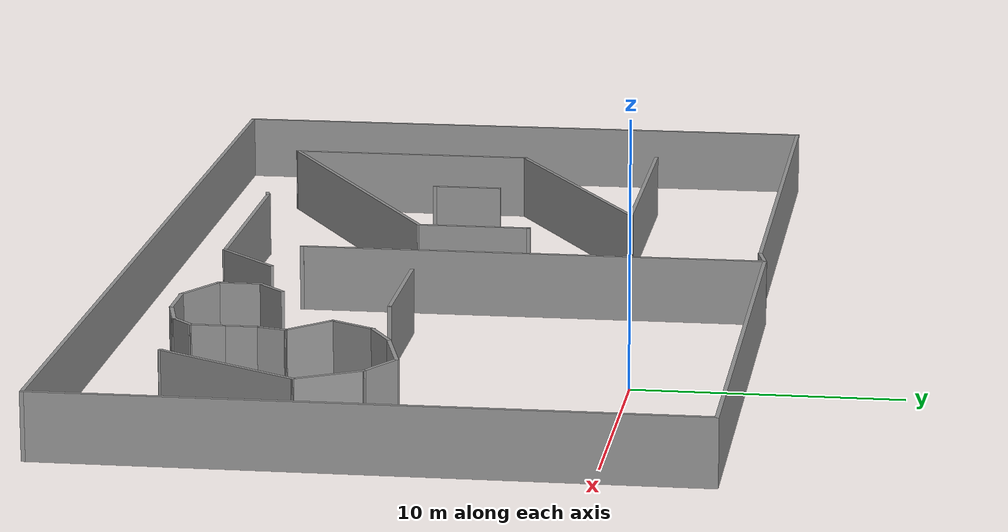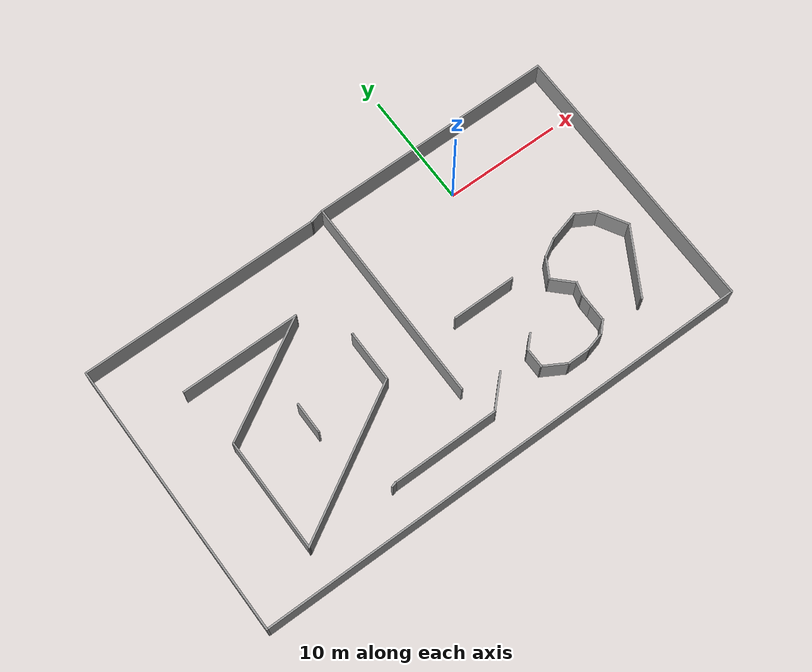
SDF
<?xml version='1.0'?>
<sdf version='1.7'>
  <model name='Untitled'>
    <pose>-9.90594 -7.76724 0 0 -0 0</pose>
    <link name='Wall_1'>
      <collision name='Wall_1_Collision'>
        <geometry>
          <box>
            <size>21.25 0.15 2.5</size>
          </box>
        </geometry>
        <pose>0 0 1.25 0 -0 0</pose>
      </collision>
      <visual name='Wall_1_Visual'>
        <pose>0 0 1.25 0 -0 0</pose>
        <geometry>
          <box>
            <size>21.25 0.15 2.5</size>
          </box>
        </geometry>
        <material>
          <script>
            <uri>file://media/materials/scripts/gazebo.material</uri>
            <name>Gazebo/Grey</name>
          </script>
          <ambient>1 1 1 1</ambient>
        </material>
        <meta>
          <layer>0</layer>
        </meta>
      </visual>
      <pose>10.875 11.9179 0 0 -0 0</pose>
    </link>
    <link name='Wall_11'>
      <collision name='Wall_11_Collision'>
        <geometry>
          <box>
            <size>10.25 0.15 2.5</size>
          </box>
        </geometry>
        <pose>0 0 1.25 0 -0 0</pose>
      </collision>
      <visual name='Wall_11_Visual'>
        <pose>0 0 1.25 0 -0 0</pose>
        <geometry>
          <box>
            <size>10.25 0.15 2.5</size>
          </box>
        </geometry>
        <material>
          <script>
            <uri>file://media/materials/scripts/gazebo.material</uri>
            <name>Gazebo/Grey</name>
          </script>
          <ambient>1 1 1 1</ambient>
        </material>
        <meta>
          <layer>0</layer>
        </meta>
      </visual>
      <pose>-11.3016 6.11885 0 0 -0 0</pose>
    </link>
    <link name='Wall_12'>
      <collision name='Wall_12_Collision'>
        <geometry>
          <box>
            <size>11 0.15 2.5</size>
          </box>
        </geometry>
        <pose>0 0 1.25 0 -0 0</pose>
      </collision>
      <visual name='Wall_12_Visual'>
        <pose>0 0 1.25 0 -0 0</pose>
        <geometry>
          <box>
            <size>11 0.15 2.5</size>
          </box>
        </geometry>
        <material>
          <script>
            <uri>file://media/materials/scripts/gazebo.material</uri>
            <name>Gazebo/Grey</name>
          </script>
          <ambient>1 1 1 1</ambient>
        </material>
        <meta>
          <layer>0</layer>
        </meta>
      </visual>
      <pose>-10.9498 3.40634 0 0 -0 -2.61799</pose>
    </link>
    <link name='Wall_13'>
      <collision name='Wall_13_Collision'>
        <geometry>
          <box>
            <size>9.75 0.15 2.5</size>
          </box>
        </geometry>
        <pose>0 0 1.25 0 -0 0</pose>
      </collision>
      <visual name='Wall_13_Visual'>
        <pose>0 0 1.25 0 -0 0</pose>
        <geometry>
          <box>
            <size>9.75 0.15 2.5</size>
          </box>
        </geometry>
        <material>
          <script>
            <uri>file://media/materials/scripts/gazebo.material</uri>
            <name>Gazebo/Grey</name>
          </script>
          <ambient>1 1 1 1</ambient>
        </material>
        <meta>
          <layer>0</layer>
        </meta>
      </visual>
      <pose>-15.6479 -4.10616 0 0 -0 -1.5708</pose>
    </link>
    <link name='Wall_14'>
      <collision name='Wall_14_Collision'>
        <geometry>
          <box>
            <size>14 0.15 2.5</size>
          </box>
        </geometry>
        <pose>0 0 1.25 0 -0 0</pose>
      </collision>
      <visual name='Wall_14_Visual'>
        <pose>0 0 1.25 0 -0 0</pose>
        <geometry>
          <box>
            <size>14 0.15 2.5</size>
          </box>
        </geometry>
        <material>
          <script>
            <uri>file://media/materials/scripts/gazebo.material</uri>
            <name>Gazebo/Grey</name>
          </script>
          <ambient>1 1 1 1</ambient>
        </material>
        <meta>
          <layer>0</layer>
        </meta>
      </visual>
      <pose>-9.65072 -5.44365 0 0 -0 0.523599</pose>
    </link>
    <link name='Wall_15'>
      <collision name='Wall_15_Collision'>
        <geometry>
          <box>
            <size>4.5 0.15 2.5</size>
          </box>
        </geometry>
        <pose>0 0 1.25 0 -0 0</pose>
      </collision>
      <visual name='Wall_15_Visual'>
        <pose>0 0 1.25 0 -0 0</pose>
        <geometry>
          <box>
            <size>4.5 0.15 2.5</size>
          </box>
        </geometry>
        <material>
          <script>
            <uri>file://media/materials/scripts/gazebo.material</uri>
            <name>Gazebo/Grey</name>
          </script>
          <ambient>1 1 1 1</ambient>
        </material>
        <meta>
          <layer>0</layer>
        </meta>
      </visual>
      <pose>-3.65349 0.193846 0 0 -0 1.5708</pose>
    </link>
    <link name='Wall_16'>
      <collision name='Wall_16_Collision'>
        <geometry>
          <box>
            <size>0.16 0.15 2.5</size>
          </box>
        </geometry>
        <pose>0 0 1.25 0 -0 0</pose>
      </collision>
      <visual name='Wall_16_Visual'>
        <pose>0 0 1.25 0 -0 0</pose>
        <geometry>
          <box>
            <size>0.16 0.15 2.5</size>
          </box>
        </geometry>
        <material>
          <script>
            <uri>file://media/materials/scripts/gazebo.material</uri>
            <name>Gazebo/Grey</name>
          </script>
          <ambient>1 1 1 1</ambient>
        </material>
        <meta>
          <layer>0</layer>
        </meta>
      </visual>
      <pose>-3.64849 2.36885 0 0 -0 0</pose>
    </link>
    <link name='Wall_18'>
      <collision name='Wall_18_Collision'>
        <geometry>
          <box>
            <size>2.75 0.15 2.5</size>
          </box>
        </geometry>
        <pose>0 0 1.25 0 -0 0</pose>
      </collision>
      <visual name='Wall_18_Visual'>
        <pose>0 0 1.25 0 -0 0</pose>
        <geometry>
          <box>
            <size>2.75 0.15 2.5</size>
          </box>
        </geometry>
        <material>
          <script>
            <uri>file://media/materials/scripts/gazebo.material</uri>
            <name>Gazebo/Grey</name>
          </script>
          <ambient>1 1 1 1</ambient>
        </material>
        <meta>
          <layer>0</layer>
        </meta>
      </visual>
      <pose>-10.11 -0.992237 0 0 -0 -1.5708</pose>
    </link>
    <link name='Wall_19'>
      <collision name='Wall_19_Collision'>
        <geometry>
          <box>
            <size>0.15 0.15 2.5</size>
          </box>
        </geometry>
        <pose>0 0 1.25 0 -0 0</pose>
      </collision>
      <visual name='Wall_19_Visual'>
        <pose>0 0 1.25 0 -0 0</pose>
        <geometry>
          <box>
            <size>0.15 0.15 2.5</size>
          </box>
        </geometry>
        <material>
          <script>
            <uri>file://media/materials/scripts/gazebo.material</uri>
            <name>Gazebo/Grey</name>
          </script>
          <ambient>1 1 1 1</ambient>
        </material>
        <meta>
          <layer>0</layer>
        </meta>
      </visual>
      <pose>-10.11 -2.29224 0 0 -0 0</pose>
    </link>
    <link name='Wall_2'>
      <collision name='Wall_2_Collision'>
        <geometry>
          <box>
            <size>24 0.15 2.5</size>
          </box>
        </geometry>
        <pose>0 0 1.25 0 -0 0</pose>
      </collision>
      <visual name='Wall_2_Visual'>
        <pose>0 0 1.25 0 -0 0</pose>
        <geometry>
          <box>
            <size>24 0.15 2.5</size>
          </box>
        </geometry>
        <material>
          <script>
            <uri>file://media/materials/scripts/gazebo.material</uri>
            <name>Gazebo/Grey</name>
          </script>
          <ambient>1 1 1 1</ambient>
        </material>
        <meta>
          <layer>0</layer>
        </meta>
      </visual>
      <pose>21.425 -0.007109 0 0 -0 -1.5708</pose>
    </link>
    <link name='Wall_21'>
      <collision name='Wall_21_Collision'>
        <geometry>
          <box>
            <size>1.5 0.15 2.5</size>
          </box>
        </geometry>
        <pose>0 0 1.25 0 -0 0</pose>
      </collision>
      <visual name='Wall_21_Visual'>
        <pose>0 0 1.25 0 -0 0</pose>
        <geometry>
          <box>
            <size>1.5 0.15 2.5</size>
          </box>
        </geometry>
        <material>
          <script>
            <uri>file://media/materials/scripts/gazebo.material</uri>
            <name>Gazebo/Grey</name>
          </script>
          <ambient>1 1 1 1</ambient>
        </material>
        <meta>
          <layer>0</layer>
        </meta>
      </visual>
      <pose>6.63069 -5.98062 0 0 -0 -2.35619</pose>
    </link>
    <link name='Wall_22'>
      <collision name='Wall_22_Collision'>
        <geometry>
          <box>
            <size>1.75 0.15 2.5</size>
          </box>
        </geometry>
        <pose>0 0 1.25 0 -0 0</pose>
      </collision>
      <visual name='Wall_22_Visual'>
        <pose>0 0 1.25 0 -0 0</pose>
        <geometry>
          <box>
            <size>1.75 0.15 2.5</size>
          </box>
        </geometry>
        <material>
          <script>
            <uri>file://media/materials/scripts/gazebo.material</uri>
            <name>Gazebo/Grey</name>
          </script>
          <ambient>1 1 1 1</ambient>
        </material>
        <meta>
          <layer>0</layer>
        </meta>
      </visual>
      <pose>6.15339 -7.25791 0 0 -0 -1.5708</pose>
    </link>
    <link name='Wall_23'>
      <collision name='Wall_23_Collision'>
        <geometry>
          <box>
            <size>2.25 0.15 2.5</size>
          </box>
        </geometry>
        <pose>0 0 1.25 0 -0 0</pose>
      </collision>
      <visual name='Wall_23_Visual'>
        <pose>0 0 1.25 0 -0 0</pose>
        <geometry>
          <box>
            <size>2.25 0.15 2.5</size>
          </box>
        </geometry>
        <material>
          <script>
            <uri>file://media/materials/scripts/gazebo.material</uri>
            <name>Gazebo/Grey</name>
          </script>
          <ambient>1 1 1 1</ambient>
        </material>
        <meta>
          <layer>0</layer>
        </meta>
      </visual>
      <pose>7.06272 -8.58291 0 0 -0 -0.523599</pose>
    </link>
    <link name='Wall_24'>
      <collision name='Wall_24_Collision'>
        <geometry>
          <box>
            <size>2 0.15 2.5</size>
          </box>
        </geometry>
        <pose>0 0 1.25 0 -0 0</pose>
      </collision>
      <visual name='Wall_24_Visual'>
        <pose>0 0 1.25 0 -0 0</pose>
        <geometry>
          <box>
            <size>2 0.15 2.5</size>
          </box>
        </geometry>
        <material>
          <script>
            <uri>file://media/materials/scripts/gazebo.material</uri>
            <name>Gazebo/Grey</name>
          </script>
          <ambient>1 1 1 1</ambient>
        </material>
        <meta>
          <layer>0</layer>
        </meta>
      </visual>
      <pose>8.89705 -9.10791 0 0 -0 0</pose>
    </link>
    <link name='Wall_25'>
      <collision name='Wall_25_Collision'>
        <geometry>
          <box>
            <size>1.75 0.15 2.5</size>
          </box>
        </geometry>
        <pose>0 0 1.25 0 -0 0</pose>
      </collision>
      <visual name='Wall_25_Visual'>
        <pose>0 0 1.25 0 -0 0</pose>
        <geometry>
          <box>
            <size>1.75 0.15 2.5</size>
          </box>
        </geometry>
        <material>
          <script>
            <uri>file://media/materials/scripts/gazebo.material</uri>
            <name>Gazebo/Grey</name>
          </script>
          <ambient>1 1 1 1</ambient>
        </material>
        <meta>
          <layer>0</layer>
        </meta>
      </visual>
      <pose>10.5948 -8.90086 0 0 -0 0.261799</pose>
    </link>
    <link name='Wall_26'>
      <collision name='Wall_26_Collision'>
        <geometry>
          <box>
            <size>1.25 0.15 2.5</size>
          </box>
        </geometry>
        <pose>0 0 1.25 0 -0 0</pose>
      </collision>
      <visual name='Wall_26_Visual'>
        <pose>0 0 1.25 0 -0 0</pose>
        <geometry>
          <box>
            <size>1.25 0.15 2.5</size>
          </box>
        </geometry>
        <material>
          <script>
            <uri>file://media/materials/scripts/gazebo.material</uri>
            <name>Gazebo/Grey</name>
          </script>
          <ambient>1 1 1 1</ambient>
        </material>
        <meta>
          <layer>0</layer>
        </meta>
      </visual>
      <pose>11.7564 -8.3049 0 0 -0 0.785398</pose>
    </link>
    <link name='Wall_27'>
      <collision name='Wall_27_Collision'>
        <geometry>
          <box>
            <size>1.5 0.15 2.5</size>
          </box>
        </geometry>
        <pose>0 0 1.25 0 -0 0</pose>
      </collision>
      <visual name='Wall_27_Visual'>
        <pose>0 0 1.25 0 -0 0</pose>
        <geometry>
          <box>
            <size>1.5 0.15 2.5</size>
          </box>
        </geometry>
        <material>
          <script>
            <uri>file://media/materials/scripts/gazebo.material</uri>
            <name>Gazebo/Grey</name>
          </script>
          <ambient>1 1 1 1</ambient>
        </material>
        <meta>
          <layer>0</layer>
        </meta>
      </visual>
      <pose>12.1453 -7.24099 0 0 -0 1.5708</pose>
    </link>
    <link name='Wall_28'>
      <collision name='Wall_28_Collision'>
        <geometry>
          <box>
            <size>1.25 0.15 2.5</size>
          </box>
        </geometry>
        <pose>0 0 1.25 0 -0 0</pose>
      </collision>
      <visual name='Wall_28_Visual'>
        <pose>0 0 1.25 0 -0 0</pose>
        <geometry>
          <box>
            <size>1.25 0.15 2.5</size>
          </box>
        </geometry>
        <material>
          <script>
            <uri>file://media/materials/scripts/gazebo.material</uri>
            <name>Gazebo/Grey</name>
          </script>
          <ambient>1 1 1 1</ambient>
        </material>
        <meta>
          <layer>0</layer>
        </meta>
      </visual>
      <pose>12.1453 -6.01599 0 0 -0 1.5708</pose>
    </link>
    <link name='Wall_29'>
      <collision name='Wall_29_Collision'>
        <geometry>
          <box>
            <size>1.25 0.15 2.5</size>
          </box>
        </geometry>
        <pose>0 0 1.25 0 -0 0</pose>
      </collision>
      <visual name='Wall_29_Visual'>
        <pose>0 0 1.25 0 -0 0</pose>
        <geometry>
          <box>
            <size>1.25 0.15 2.5</size>
          </box>
        </geometry>
        <material>
          <script>
            <uri>file://media/materials/scripts/gazebo.material</uri>
            <name>Gazebo/Grey</name>
          </script>
          <ambient>1 1 1 1</ambient>
        </material>
        <meta>
          <layer>0</layer>
        </meta>
      </visual>
      <pose>12.2877 -4.93473 0 0 -0 1.309</pose>
    </link>
    <link name='Wall_3'>
      <collision name='Wall_3_Collision'>
        <geometry>
          <box>
            <size>43 0.15 2.5</size>
          </box>
        </geometry>
        <pose>0 0 1.25 0 -0 0</pose>
      </collision>
      <visual name='Wall_3_Visual'>
        <pose>0 0 1.25 0 -0 0</pose>
        <geometry>
          <box>
            <size>43 0.15 2.5</size>
          </box>
        </geometry>
        <material>
          <script>
            <uri>file://media/materials/scripts/gazebo.material</uri>
            <name>Gazebo/Grey</name>
          </script>
          <ambient>1 1 1 1</ambient>
        </material>
        <meta>
          <layer>0</layer>
        </meta>
      </visual>
      <pose>-0 -11.9321 0 0 -0 3.14159</pose>
    </link>
    <link name='Wall_30'>
      <collision name='Wall_30_Collision'>
        <geometry>
          <box>
            <size>2.25 0.15 2.5</size>
          </box>
        </geometry>
        <pose>0 0 1.25 0 -0 0</pose>
      </collision>
      <visual name='Wall_30_Visual'>
        <pose>0 0 1.25 0 -0 0</pose>
        <geometry>
          <box>
            <size>2.25 0.15 2.5</size>
          </box>
        </geometry>
        <material>
          <script>
            <uri>file://media/materials/scripts/gazebo.material</uri>
            <name>Gazebo/Grey</name>
          </script>
          <ambient>1 1 1 1</ambient>
        </material>
        <meta>
          <layer>0</layer>
        </meta>
      </visual>
      <pose>11.6876 -3.661 0 0 -0 2.35619</pose>
    </link>
    <link name='Wall_31'>
      <collision name='Wall_31_Collision'>
        <geometry>
          <box>
            <size>2 0.15 2.5</size>
          </box>
        </geometry>
        <pose>0 0 1.25 0 -0 0</pose>
      </collision>
      <visual name='Wall_31_Visual'>
        <pose>0 0 1.25 0 -0 0</pose>
        <geometry>
          <box>
            <size>2 0.15 2.5</size>
          </box>
        </geometry>
        <material>
          <script>
            <uri>file://media/materials/scripts/gazebo.material</uri>
            <name>Gazebo/Grey</name>
          </script>
          <ambient>1 1 1 1</ambient>
        </material>
        <meta>
          <layer>0</layer>
        </meta>
      </visual>
      <pose>11.4076 -2.11747 0 0 -0 1.0472</pose>
    </link>
    <link name='Wall_32'>
      <collision name='Wall_32_Collision'>
        <geometry>
          <box>
            <size>1.75 0.15 2.5</size>
          </box>
        </geometry>
        <pose>0 0 1.25 0 -0 0</pose>
      </collision>
      <visual name='Wall_32_Visual'>
        <pose>0 0 1.25 0 -0 0</pose>
        <geometry>
          <box>
            <size>1.75 0.15 2.5</size>
          </box>
        </geometry>
        <material>
          <script>
            <uri>file://media/materials/scripts/gazebo.material</uri>
            <name>Gazebo/Grey</name>
          </script>
          <ambient>1 1 1 1</ambient>
        </material>
        <meta>
          <layer>0</layer>
        </meta>
      </visual>
      <pose>12.5629 -0.916396 0 0 -0 0.523599</pose>
    </link>
    <link name='Wall_33'>
      <collision name='Wall_33_Collision'>
        <geometry>
          <box>
            <size>2.75 0.15 2.5</size>
          </box>
        </geometry>
        <pose>0 0 1.25 0 -0 0</pose>
      </collision>
      <visual name='Wall_33_Visual'>
        <pose>0 0 1.25 0 -0 0</pose>
        <geometry>
          <box>
            <size>2.75 0.15 2.5</size>
          </box>
        </geometry>
        <material>
          <script>
            <uri>file://media/materials/scripts/gazebo.material</uri>
            <name>Gazebo/Grey</name>
          </script>
          <ambient>1 1 1 1</ambient>
        </material>
        <meta>
          <layer>0</layer>
        </meta>
      </visual>
      <pose>14.5115 -0.179932 0 0 -0 0.261799</pose>
    </link>
    <link name='Wall_34'>
      <collision name='Wall_34_Collision'>
        <geometry>
          <box>
            <size>2 0.15 2.5</size>
          </box>
        </geometry>
        <pose>0 0 1.25 0 -0 0</pose>
      </collision>
      <visual name='Wall_34_Visual'>
        <pose>0 0 1.25 0 -0 0</pose>
        <geometry>
          <box>
            <size>2 0.15 2.5</size>
          </box>
        </geometry>
        <material>
          <script>
            <uri>file://media/materials/scripts/gazebo.material</uri>
            <name>Gazebo/Grey</name>
          </script>
          <ambient>1 1 1 1</ambient>
        </material>
        <meta>
          <layer>0</layer>
        </meta>
      </visual>
      <pose>16.5682 -0.305967 0 0 -0 -0.523599</pose>
    </link>
    <link name='Wall_35'>
      <collision name='Wall_35_Collision'>
        <geometry>
          <box>
            <size>2.75 0.15 2.5</size>
          </box>
        </geometry>
        <pose>0 0 1.25 0 -0 0</pose>
      </collision>
      <visual name='Wall_35_Visual'>
        <pose>0 0 1.25 0 -0 0</pose>
        <geometry>
          <box>
            <size>2.75 0.15 2.5</size>
          </box>
        </geometry>
        <material>
          <script>
            <uri>file://media/materials/scripts/gazebo.material</uri>
            <name>Gazebo/Grey</name>
          </script>
          <ambient>1 1 1 1</ambient>
        </material>
        <meta>
          <layer>0</layer>
        </meta>
      </visual>
      <pose>18.0193 -1.8943 0 0 -0 -1.0472</pose>
    </link>
    <link name='Wall_36'>
      <collision name='Wall_36_Collision'>
        <geometry>
          <box>
            <size>6.25 0.15 2.5</size>
          </box>
        </geometry>
        <pose>0 0 1.25 0 -0 0</pose>
      </collision>
      <visual name='Wall_36_Visual'>
        <pose>0 0 1.25 0 -0 0</pose>
        <geometry>
          <box>
            <size>6.25 0.15 2.5</size>
          </box>
        </geometry>
        <material>
          <script>
            <uri>file://media/materials/scripts/gazebo.material</uri>
            <name>Gazebo/Grey</name>
          </script>
          <ambient>1 1 1 1</ambient>
        </material>
        <meta>
          <layer>0</layer>
        </meta>
      </visual>
      <pose>17.1443 -5.66151 0 0 -0 -2.0944</pose>
    </link>
    <link name='Wall_37'>
      <collision name='Wall_37_Collision'>
        <geometry>
          <box>
            <size>0.16 0.15 2.5</size>
          </box>
        </geometry>
        <pose>0 0 1.25 0 -0 0</pose>
      </collision>
      <visual name='Wall_37_Visual'>
        <pose>0 0 1.25 0 -0 0</pose>
        <geometry>
          <box>
            <size>0.16 0.15 2.5</size>
          </box>
        </geometry>
        <material>
          <script>
            <uri>file://media/materials/scripts/gazebo.material</uri>
            <name>Gazebo/Grey</name>
          </script>
          <ambient>1 1 1 1</ambient>
        </material>
        <meta>
          <layer>0</layer>
        </meta>
      </visual>
      <pose>15.6243 -8.30289 0 0 -0 0</pose>
    </link>
    <link name='Wall_39'>
      <collision name='Wall_39_Collision'>
        <geometry>
          <box>
            <size>5.5 0.15 2.5</size>
          </box>
        </geometry>
        <pose>0 0 1.25 0 -0 0</pose>
      </collision>
      <visual name='Wall_39_Visual'>
        <pose>0 0 1.25 0 -0 0</pose>
        <geometry>
          <box>
            <size>5.5 0.15 2.5</size>
          </box>
        </geometry>
        <material>
          <script>
            <uri>file://media/materials/scripts/gazebo.material</uri>
            <name>Gazebo/Grey</name>
          </script>
          <ambient>1 1 1 1</ambient>
        </material>
        <meta>
          <layer>0</layer>
        </meta>
      </visual>
      <pose>6.01655 -1.19881 0 0 -0 0</pose>
    </link>
    <link name='Wall_4'>
      <collision name='Wall_4_Collision'>
        <geometry>
          <box>
            <size>23.75 0.15 2.5</size>
          </box>
        </geometry>
        <pose>0 0 1.25 0 -0 0</pose>
      </collision>
      <visual name='Wall_4_Visual'>
        <pose>0 0 1.25 0 -0 0</pose>
        <geometry>
          <box>
            <size>23.75 0.15 2.5</size>
          </box>
        </geometry>
        <material>
          <script>
            <uri>file://media/materials/scripts/gazebo.material</uri>
            <name>Gazebo/Grey</name>
          </script>
          <ambient>1 1 1 1</ambient>
        </material>
        <meta>
          <layer>0</layer>
        </meta>
      </visual>
      <pose>-21.425 -0.132109 0 0 -0 1.5708</pose>
    </link>
    <link name='Wall_40'>
      <collision name='Wall_40_Collision'>
        <geometry>
          <box>
            <size>0.15 0.15 2.5</size>
          </box>
        </geometry>
        <pose>0 0 1.25 0 -0 0</pose>
      </collision>
      <visual name='Wall_40_Visual'>
        <pose>0 0 1.25 0 -0 0</pose>
        <geometry>
          <box>
            <size>0.15 0.15 2.5</size>
          </box>
        </geometry>
        <material>
          <script>
            <uri>file://media/materials/scripts/gazebo.material</uri>
            <name>Gazebo/Grey</name>
          </script>
          <ambient>1 1 1 1</ambient>
        </material>
        <meta>
          <layer>0</layer>
        </meta>
      </visual>
      <pose>8.69155 -1.19881 0 0 -0 0</pose>
    </link>
    <link name='Wall_42'>
      <collision name='Wall_42_Collision'>
        <geometry>
          <box>
            <size>3.25 0.15 2.5</size>
          </box>
        </geometry>
        <pose>0 0 1.25 0 -0 0</pose>
      </collision>
      <visual name='Wall_42_Visual'>
        <pose>0 0 1.25 0 -0 0</pose>
        <geometry>
          <box>
            <size>3.25 0.15 2.5</size>
          </box>
        </geometry>
        <material>
          <script>
            <uri>file://media/materials/scripts/gazebo.material</uri>
            <name>Gazebo/Grey</name>
          </script>
          <ambient>1 1 1 1</ambient>
        </material>
        <meta>
          <layer>0</layer>
        </meta>
      </visual>
      <pose>2.35314 -7.67546 0 0 -0 -2.35619</pose>
    </link>
    <link name='Wall_43'>
      <collision name='Wall_43_Collision'>
        <geometry>
          <box>
            <size>9.25 0.15 2.5</size>
          </box>
        </geometry>
        <pose>0 0 1.25 0 -0 0</pose>
      </collision>
      <visual name='Wall_43_Visual'>
        <pose>0 0 1.25 0 -0 0</pose>
        <geometry>
          <box>
            <size>9.25 0.15 2.5</size>
          </box>
        </geometry>
        <material>
          <script>
            <uri>file://media/materials/scripts/gazebo.material</uri>
            <name>Gazebo/Grey</name>
          </script>
          <ambient>1 1 1 1</ambient>
        </material>
        <meta>
          <layer>0</layer>
        </meta>
      </visual>
      <pose>-3.29287 -8.77148 0 0 -0 3.14159</pose>
    </link>
    <link name='Wall_44'>
      <collision name='Wall_44_Collision'>
        <geometry>
          <box>
            <size>0.5 0.15 2.5</size>
          </box>
        </geometry>
        <pose>0 0 1.25 0 -0 0</pose>
      </collision>
      <visual name='Wall_44_Visual'>
        <pose>0 0 1.25 0 -0 0</pose>
        <geometry>
          <box>
            <size>0.5 0.15 2.5</size>
          </box>
        </geometry>
        <material>
          <script>
            <uri>file://media/materials/scripts/gazebo.material</uri>
            <name>Gazebo/Grey</name>
          </script>
          <ambient>1 1 1 1</ambient>
        </material>
        <meta>
          <layer>0</layer>
        </meta>
      </visual>
      <pose>-8.01191 -8.81677 0 0 -0 -2.87979</pose>
    </link>
    <link name='Wall_5'>
      <collision name='Wall_5_Collision'>
        <geometry>
          <box>
            <size>20.75 0.15 2.5</size>
          </box>
        </geometry>
        <pose>0 0 1.25 0 -0 0</pose>
      </collision>
      <visual name='Wall_5_Visual'>
        <pose>0 0 1.25 0 -0 0</pose>
        <geometry>
          <box>
            <size>20.75 0.15 2.5</size>
          </box>
        </geometry>
        <material>
          <script>
            <uri>file://media/materials/scripts/gazebo.material</uri>
            <name>Gazebo/Grey</name>
          </script>
          <ambient>1 1 1 1</ambient>
        </material>
        <meta>
          <layer>0</layer>
        </meta>
      </visual>
      <pose>-11.125 11.6679 0 0 -0 0</pose>
    </link>
    <link name='Wall_6'>
      <collision name='Wall_6_Collision'>
        <geometry>
          <box>
            <size>1.32686 0.15 2.5</size>
          </box>
        </geometry>
        <pose>0 0 1.25 0 -0 0</pose>
      </collision>
      <visual name='Wall_6_Visual'>
        <pose>0 0 1.25 0 -0 0</pose>
        <geometry>
          <box>
            <size>1.32686 0.15 2.5</size>
          </box>
        </geometry>
        <material>
          <script>
            <uri>file://media/materials/scripts/gazebo.material</uri>
            <name>Gazebo/Grey</name>
          </script>
          <ambient>1 1 1 1</ambient>
        </material>
        <meta>
          <layer>0</layer>
        </meta>
      </visual>
      <pose>-0.25 11.7929 0 0 -0 0.214061</pose>
    </link>
    <link name='Wall_7'>
      <collision name='Wall_7_Collision'>
        <geometry>
          <box>
            <size>18 0.15 2.5</size>
          </box>
        </geometry>
        <pose>0 0 1.25 0 -0 0</pose>
      </collision>
      <visual name='Wall_7_Visual'>
        <pose>0 0 1.25 0 -0 0</pose>
        <geometry>
          <box>
            <size>18 0.15 2.5</size>
          </box>
        </geometry>
        <material>
          <script>
            <uri>file://media/materials/scripts/gazebo.material</uri>
            <name>Gazebo/Grey</name>
          </script>
          <ambient>1 1 1 1</ambient>
        </material>
        <meta>
          <layer>0</layer>
        </meta>
      </visual>
      <pose>0.324999 2.99289 0 0 -0 -1.5708</pose>
    </link>
    <link name='Wall_8'>
      <collision name='Wall_8_Collision'>
        <geometry>
          <box>
            <size>0.16 0.15 2.5</size>
          </box>
        </geometry>
        <pose>0 0 1.25 0 -0 0</pose>
      </collision>
      <visual name='Wall_8_Visual'>
        <pose>0 0 1.25 0 -0 0</pose>
        <geometry>
          <box>
            <size>0.16 0.15 2.5</size>
          </box>
        </geometry>
        <material>
          <script>
            <uri>file://media/materials/scripts/gazebo.material</uri>
            <name>Gazebo/Grey</name>
          </script>
          <ambient>1 1 1 1</ambient>
        </material>
        <meta>
          <layer>0</layer>
        </meta>
      </visual>
      <pose>0.329999 -5.93211 0 0 -0 0</pose>
    </link>
    <static>1</static>
  </model>
</sdf>
